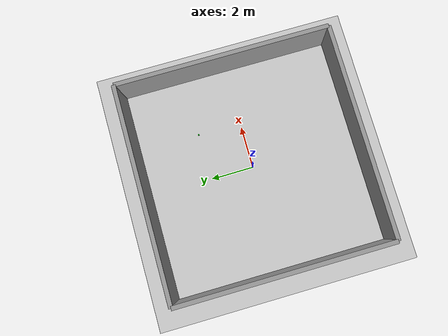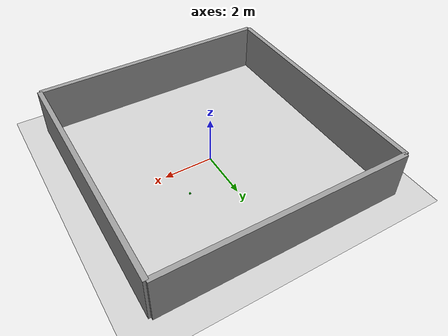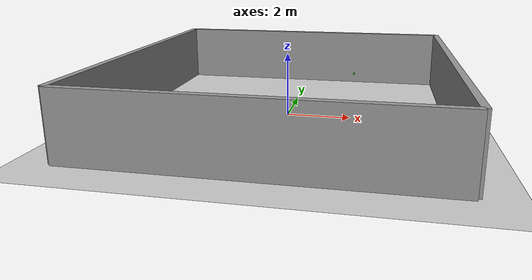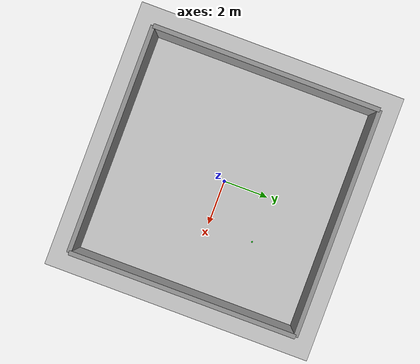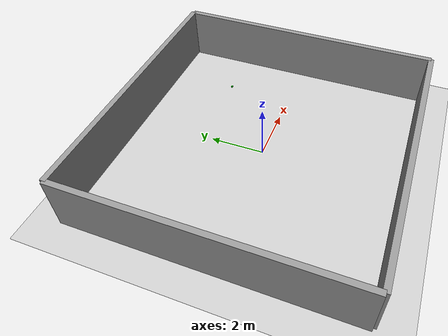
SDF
<?xml version="1.0" ?>

<sdf version="1.6">
  <world name="default">

    <!-- Plugin for simulating physics -->
    <plugin
      filename="gz-sim-physics-system"
      name="gz::sim::systems::Physics">
    </plugin>

    <!-- Plugin for handling user commands -->
    <plugin
      filename="gz-sim-user-commands-system"
      name="gz::sim::systems::UserCommands">
    </plugin>

    <!-- Plugin for broadcasting scene updates -->
    <plugin
      filename="gz-sim-scene-broadcaster-system"
      name="gz::sim::systems::SceneBroadcaster">
    </plugin>

    <!-- Plugin for handling sensors like the LIDAR -->
    <plugin
      filename="gz-sim-sensors-system"
      name="gz::sim::systems::Sensors">
      <render_engine>ogre2</render_engine>
    </plugin>

    <!-- Plugin for IMU -->
    <plugin filename="gz-sim-imu-system"
      name="gz::sim::systems::Imu">
    </plugin>

    <plugin
      filename="gz-sim-contact-system"
      name="gz::sim::systems::Contact">
    </plugin>

     <light type="directional" name="sun">
      <cast_shadows>true</cast_shadows>
      <pose>0 0 10 0 0 0</pose>
      <diffuse>1 1 1 1</diffuse>
      <specular>0.5 0.5 0.5 1</specular>
      <attenuation>
        <range>1000</range>
        <constant>0.9</constant>
        <linear>0.01</linear>
        <quadratic>0.001</quadratic>
      </attenuation>
      <direction>-0.5 0.1 -0.9</direction>
    </light>

    <model name="ground_plane">
      <static>true</static>
      <link name="link">
        <collision name="collision">
          <geometry>
            <plane>
              <normal>0 0 1</normal>
              <size>100 100</size>
            </plane>
          </geometry>
          <surface>
            <friction>
              <ode>
                <mu>1</mu>
                <mu2>1</mu2>
              </ode>
            </friction>
          </surface>
        </collision>
        <visual name="visual">
          <geometry>
            <plane>
              <normal>0 0 1</normal>
              <size>100 100</size>
            </plane>
          </geometry>
          <material>
            <ambient>0.8 0.8 0.8 1</ambient>
            <diffuse>0.8 0.8 0.8 1</diffuse>
            <specular>0.8 0.8 0.8 1</specular>
          </material>
        </visual>
      </link>
    </model>

    <!-- Room Walls to give LIDAR something to bounce off of -->
    <model name="room_walls">
      <static>true</static>

      <!-- North Wall -->
      <link name="wall_north">
        <pose>5 0 1 0 0 0</pose>
        <collision name="col_n"><geometry><box><size>0.2 10 2</size></box></geometry></collision>
        <visual name="vis_n"><geometry><box><size>0.2 10 2</size></box></geometry><material><ambient>0.6 0.6 0.6 1</ambient></material></visual>
      </link>

      <!-- South Wall -->
      <link name="wall_south">
        <pose>-5 0 1 0 0 0</pose>
        <collision name="col_s"><geometry><box><size>0.2 10 2</size></box></geometry></collision>
        <visual name="vis_s"><geometry><box><size>0.2 10 2</size></box></geometry><material><ambient>0.6 0.6 0.6 1</ambient></material></visual>
      </link>

      <!-- East Wall -->
      <link name="wall_east">
        <pose>0 5 1 0 0 0</pose>
        <collision name="col_e"><geometry><box><size>10 0.2 2</size></box></geometry></collision>
        <visual name="vis_e"><geometry><box><size>10 0.2 2</size></box></geometry><material><ambient>0.6 0.6 0.6 1</ambient></material></visual>
      </link>

      <!-- West Wall -->
      <link name="wall_west">
        <pose>0 -5 1 0 0 0</pose>
        <collision name="col_w"><geometry><box><size>10 0.2 2</size></box></geometry></collision>
        <visual name="vis_w"><geometry><box><size>10 0.2 2</size></box></geometry><material><ambient>0.6 0.6 0.6 1</ambient></material></visual>
      </link>

    </model>

    <model name="crate">
      <static>false</static>

      <pose>2 2 1 0 0 0</pose>

      <link name="link">

        <visual name="visual">
          <geometry>
            <mesh>
              <uri>file:///home/alexander/simplebot3/ros_ws/src/simplebot_simulation/worlds/models/Green_brick.stl</uri>
              <scale>1 1 1</scale>
            </mesh>
          </geometry>
          <material>
          <ambient>0 1 0 1</ambient>
          <diffuse>0 1 0 1</diffuse>
        </material>
        </visual>

        <collision name="collision">
          <geometry>
            <box>
              <size>0.05 0.05 0.05</size>
            </box>
          </geometry>
        </collision>

        <inertial>
          <mass>1.0</mass>
          <inertia>
            <ixx>0.1</ixx>
            <iyy>0.1</iyy>
            <izz>0.1</izz>
          </inertia>
        </inertial>

      </link>
    </model>

  </world>
</sdf>
